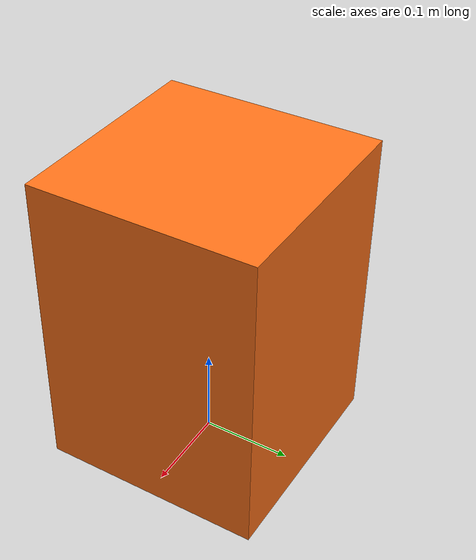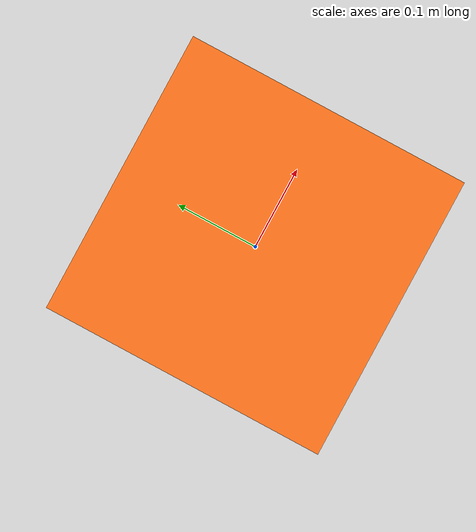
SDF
<?xml version="1.0"?>
<sdf version="1.6">
  <model name="cone">
    <static>true</static>
    <link name="link">
      <pose>0 0 0.1750 0 0 0</pose>
      <collision name="collision">
        <geometry><box><size>0.25 0.25 0.35</size></box></geometry>
      </collision>
      <visual name="visual">
        <geometry><box><size>0.25 0.25 0.35</size></box></geometry>
        <material>
          <ambient>1.0 0.45 0.1 1.0</ambient>
          <diffuse>1.0 0.45 0.1 1.0</diffuse>
        </material>
      </visual>
    </link>
  </model>
</sdf>
